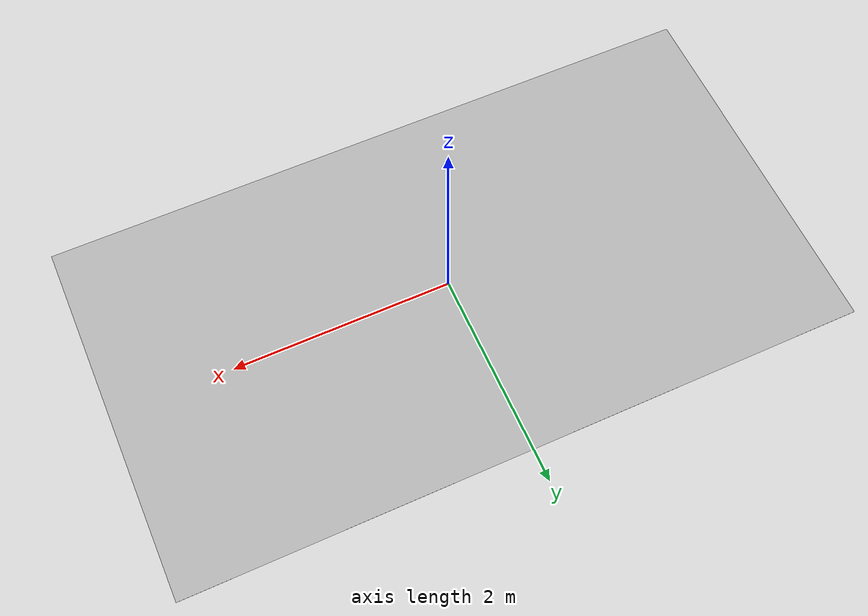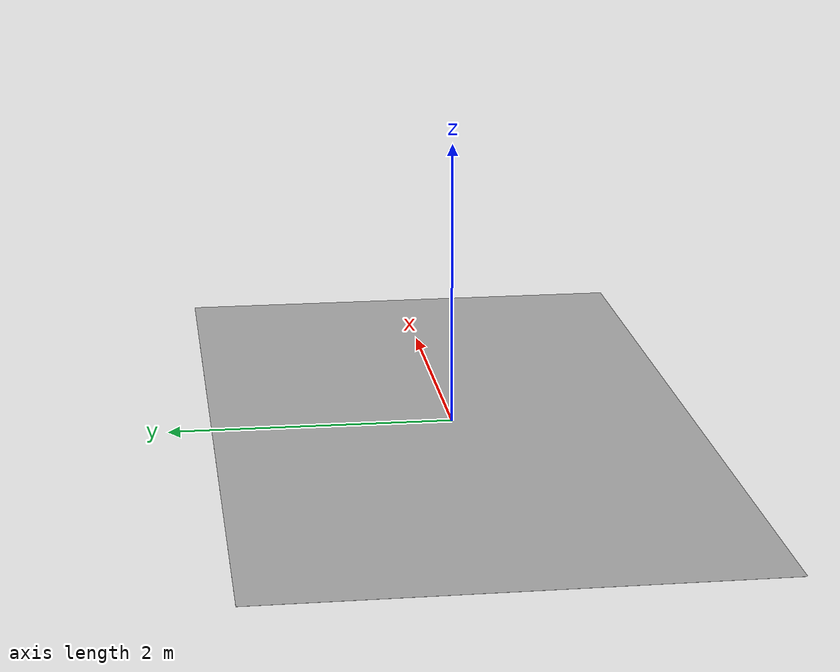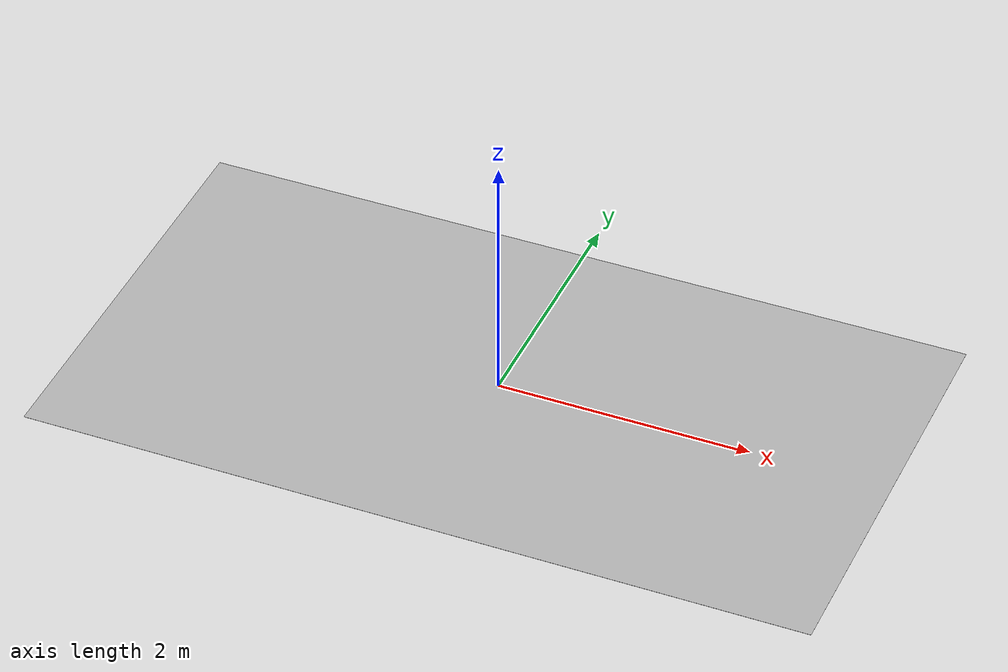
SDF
<?xml version="1.0" ?>
<sdf version="1.4">
  <model name="tag_panel">
    <static>1</static>
    <link name="link_tag_panel">
      <gravity>false</gravity>
      <visual name="visual_tag_panel">
        <geometry>
          <box>
            <size>6.2 3.4 0.001</size>
            <!-- SIZE OF THE MARKER + MARGIN -->
          </box>
        </geometry>
        <material>
          <script>
	    <uri>model://tag_panel/material/scripts</uri>
	    <uri>model://tag_panel/material/textures</uri>
            <name>tag_panel</name>
          </script>
        </material>
      </visual>
      <collision name="collision">
        <geometry>
          <box>
            <size>6.2 3.4 0.002</size>
            <!-- SIZE OF THE MARKER + MARGIN -->
          </box>
        </geometry>
      </collision>
    </link>
  </model>
</sdf>
